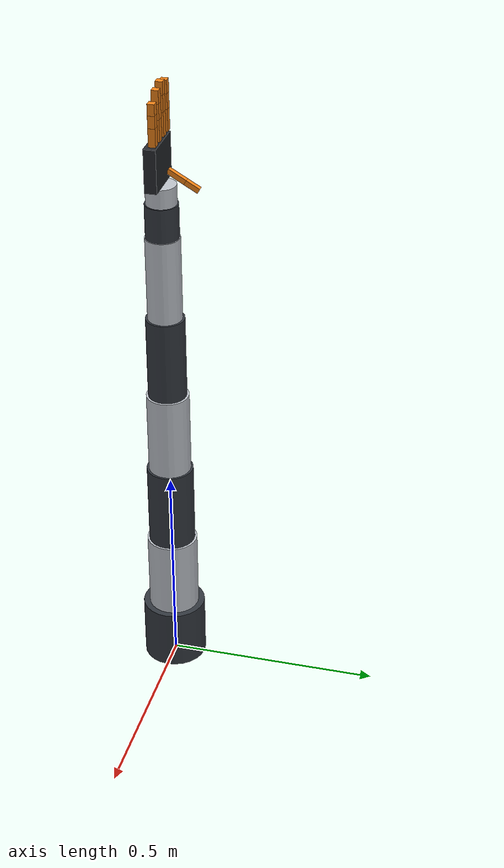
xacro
<?xml version="1.0"?>
<robot name="claw_arm" xmlns:xacro="http://www.ros.org/wiki/xacro">

  <xacro:include filename="common.xacro"/>
  <xacro:include filename="arm7r.xacro"/>
  <xacro:include filename="hand.xacro"/>

  <xacro:arm7r/>
  <xacro:claw_hand parent="tool0"/>

  <gazebo>
    <plugin filename="gz-sim-joint-state-publisher-system"
            name="gz::sim::systems::JointStatePublisher">
      <topic>/claw/joint_states</topic>
    </plugin>
  </gazebo>

</robot>

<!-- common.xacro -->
<robot xmlns:xacro="http://www.ros.org/wiki/xacro">

  <material name="arm_grey"><color rgba="0.75 0.77 0.80 1"/></material>
  <material name="arm_dark"><color rgba="0.20 0.22 0.25 1"/></material>
  <material name="palm"><color rgba="0.15 0.16 0.18 1"/></material>
  <material name="finger"><color rgba="0.96 0.52 0.09 1"/></material>

  <xacro:macro name="servo" params="joint speed">
    <gazebo>
      <plugin filename="gz-sim-joint-position-controller-system"
              name="gz::sim::systems::JointPositionController">
        <joint_name>${joint}</joint_name>
        <topic>/claw/${joint}/cmd</topic>
        <use_velocity_commands>true</use_velocity_commands>
        <cmd_max>${speed}</cmd_max>
        <cmd_min>${-speed}</cmd_min>
      </plugin>
    </gazebo>
  </xacro:macro>

</robot>

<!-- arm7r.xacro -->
<robot xmlns:xacro="http://www.ros.org/wiki/xacro">

  <xacro:macro name="arm_link" params="name length radius mass material">
    <link name="${name}">
      <inertial>
        <origin xyz="0 0 ${length / 2}"/>
        <mass value="${mass}"/>
        <inertia ixx="${mass * (3 * radius * radius + length * length) / 12}" ixy="0" ixz="0"
                 iyy="${mass * (3 * radius * radius + length * length) / 12}" iyz="0"
                 izz="${mass * radius * radius / 2}"/>
      </inertial>
      <visual>
        <origin xyz="0 0 ${length / 2}"/>
        <geometry><cylinder radius="${radius}" length="${length}"/></geometry>
        <material name="${material}"/>
      </visual>
      <collision>
        <origin xyz="0 0 ${length / 2}"/>
        <geometry><cylinder radius="${radius}" length="${length}"/></geometry>
      </collision>
    </link>
  </xacro:macro>

  <xacro:macro name="arm_joint" params="name parent child z axis lower upper">
    <joint name="${name}" type="revolute">
      <parent link="${parent}"/>
      <child link="${child}"/>
      <origin xyz="0 0 ${z}"/>
      <axis xyz="${axis}"/>
      <limit lower="${lower}" upper="${upper}" effort="300" velocity="2.5"/>
    </joint>
    <xacro:servo joint="${name}" speed="2.5"/>
  </xacro:macro>

  <xacro:macro name="arm7r">
    <link name="world"/>
    <joint name="world_to_base" type="fixed">
      <parent link="world"/>
      <child link="base_link"/>
    </joint>

    <xacro:arm_link name="base_link" length="0.15" radius="0.075" mass="6.0" material="arm_dark"/>
    <xacro:arm_link name="link1" length="0.19" radius="0.060" mass="4.0" material="arm_grey"/>
    <xacro:arm_link name="link2" length="0.20" radius="0.055" mass="4.0" material="arm_dark"/>
    <xacro:arm_link name="link3" length="0.20" radius="0.050" mass="3.0" material="arm_grey"/>
    <xacro:arm_link name="link4" length="0.20" radius="0.045" mass="3.0" material="arm_dark"/>
    <xacro:arm_link name="link5" length="0.20" radius="0.040" mass="2.0" material="arm_grey"/>
    <xacro:arm_link name="link6" length="0.08" radius="0.038" mass="1.5" material="arm_dark"/>
    <xacro:arm_link name="link7" length="0.045" radius="0.035" mass="0.5" material="arm_grey"/>

    <xacro:arm_joint name="joint1" parent="base_link" child="link1" z="0.15" axis="0 0 1" lower="-2.9" upper="2.9"/>
    <xacro:arm_joint name="joint2" parent="link1" child="link2" z="0.19" axis="0 1 0" lower="-2.3" upper="2.3"/>
    <xacro:arm_joint name="joint3" parent="link2" child="link3" z="0.20" axis="0 0 1" lower="-2.9" upper="2.9"/>
    <xacro:arm_joint name="joint4" parent="link3" child="link4" z="0.20" axis="0 1 0" lower="-2.3" upper="2.3"/>
    <xacro:arm_joint name="joint5" parent="link4" child="link5" z="0.20" axis="0 0 1" lower="-2.9" upper="2.9"/>
    <xacro:arm_joint name="joint6" parent="link5" child="link6" z="0.20" axis="0 1 0" lower="-2.3" upper="2.3"/>
    <xacro:arm_joint name="joint7" parent="link6" child="link7" z="0.08" axis="0 0 1" lower="-4.7" upper="4.7"/>

    <link name="tool0"/>
    <joint name="link7_to_tool0" type="fixed">
      <parent link="link7"/>
      <child link="tool0"/>
      <origin xyz="0 0 0.045"/>
    </joint>
  </xacro:macro>

</robot>

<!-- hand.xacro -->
<robot xmlns:xacro="http://www.ros.org/wiki/xacro">

  <xacro:property name="finger_w" value="0.016"/>

  <xacro:macro name="phalanx" params="name length width">
    <link name="${name}">
      <inertial>
        <origin xyz="${length / 2} 0 0"/>
        <mass value="0.04"/>
        <inertia ixx="2e-5" ixy="0" ixz="0" iyy="2e-5" iyz="0" izz="2e-5"/>
      </inertial>
      <visual>
        <origin xyz="${length / 2} 0 0"/>
        <geometry><box size="${length} ${width} ${width}"/></geometry>
        <material name="finger"/>
      </visual>
      <collision>
        <origin xyz="${length / 2} 0 0"/>
        <geometry><box size="${length} ${width} ${width}"/></geometry>
      </collision>
    </link>
    <gazebo reference="${name}">
      <mu1>1.5</mu1>
      <mu2>1.5</mu2>
    </gazebo>
  </xacro:macro>

  <xacro:macro name="finger_joint" params="name parent child xyz rpy:='0 0 0' axis:='0 0 1' upper effort">
    <joint name="${name}" type="revolute">
      <parent link="${parent}"/>
      <child link="${child}"/>
      <origin xyz="${xyz}" rpy="${rpy}"/>
      <axis xyz="${axis}"/>
      <limit lower="0" upper="${upper}" effort="${effort}" velocity="6.0"/>
    </joint>
    <xacro:servo joint="${name}" speed="6.0"/>
  </xacro:macro>

  <xacro:macro name="finger" params="name z l1 l2 l3">
    <xacro:phalanx name="${name}_proximal" length="${l1}" width="${finger_w}"/>
    <xacro:phalanx name="${name}_middle" length="${l2}" width="${finger_w}"/>
    <xacro:phalanx name="${name}_distal" length="${l3}" width="${finger_w}"/>
    <xacro:finger_joint name="${name}_mcp" parent="hand_base" child="${name}_proximal"
                        xyz="0.105 0 ${z}" upper="1.5" effort="0.5"/>
    <xacro:finger_joint name="${name}_pip" parent="${name}_proximal" child="${name}_middle"
                        xyz="${l1} 0 0" upper="1.6" effort="0.3"/>
    <xacro:finger_joint name="${name}_dip" parent="${name}_middle" child="${name}_distal"
                        xyz="${l2} 0 0" upper="1.2" effort="0.15"/>
  </xacro:macro>

  <xacro:macro name="claw_hand" params="parent">
    <!-- Flange z becomes the direction the fingers point. -->
    <joint name="${parent}_to_hand" type="fixed">
      <parent link="${parent}"/>
      <child link="hand_base"/>
      <origin rpy="0 ${-pi / 2} 0"/>
    </joint>

    <link name="hand_base">
      <inertial>
        <origin xyz="0.05 -0.006 0"/>
        <mass value="0.35"/>
        <inertia ixx="4e-4" ixy="0" ixz="0" iyy="5e-4" iyz="0" izz="3e-4"/>
      </inertial>
      <visual>
        <origin xyz="0.05 -0.006 0"/>
        <geometry><box size="0.10 0.028 0.11"/></geometry>
        <material name="palm"/>
      </visual>
      <collision>
        <origin xyz="0.05 -0.006 0"/>
        <geometry><box size="0.10 0.028 0.11"/></geometry>
      </collision>
    </link>

    <xacro:finger name="index" z="0.045" l1="0.050" l2="0.035" l3="0.030"/>
    <xacro:finger name="middle" z="0.015" l1="0.055" l2="0.038" l3="0.030"/>
    <xacro:finger name="ring" z="-0.015" l1="0.050" l2="0.035" l3="0.030"/>
    <xacro:finger name="pinky" z="-0.045" l1="0.042" l2="0.028" l3="0.026"/>

    <xacro:phalanx name="thumb_proximal" length="0.045" width="0.012"/>
    <xacro:phalanx name="thumb_distal" length="0.035" width="0.012"/>
    <xacro:finger_joint name="thumb_cmc" parent="hand_base" child="thumb_proximal"
                        xyz="0.020 0.008 0.030" rpy="0 0 ${radians(120)}" axis="0 0 -1"
                        upper="1.1" effort="0.5"/>
    <xacro:finger_joint name="thumb_ip" parent="thumb_proximal" child="thumb_distal"
                        xyz="0.045 0 0" axis="0 0 -1" upper="1.0" effort="0.25"/>

    <!-- Centre of the pocket between palm, thumb and fingers: the point the arm steers. -->
    <link name="grasp_point"/>
    <joint name="hand_to_grasp_point" type="fixed">
      <parent link="hand_base"/>
      <child link="grasp_point"/>
      <origin xyz="0.068 0.047 0"/>
    </joint>
  </xacro:macro>

</robot>
